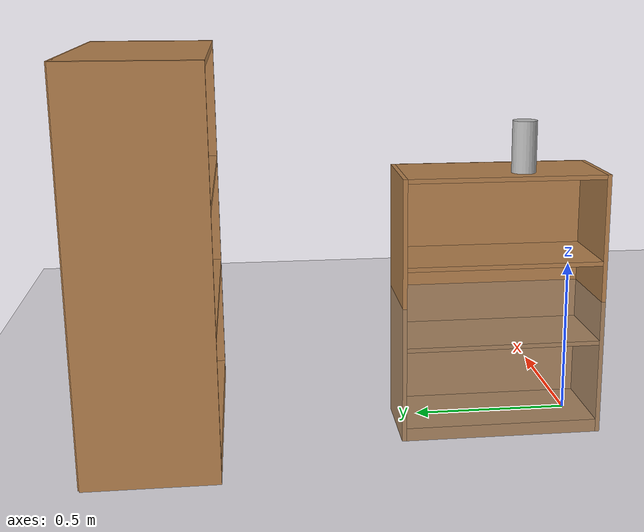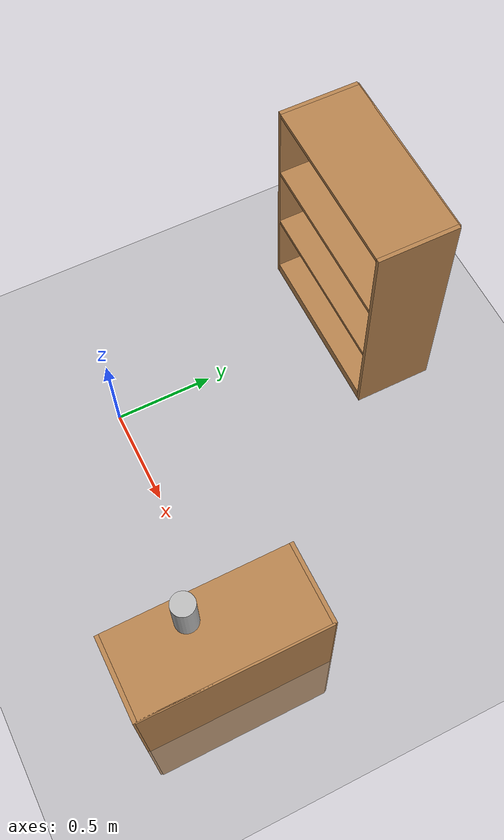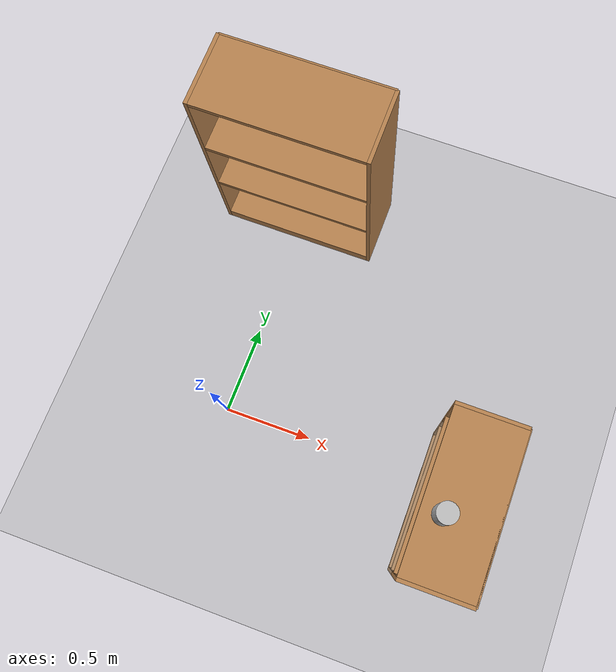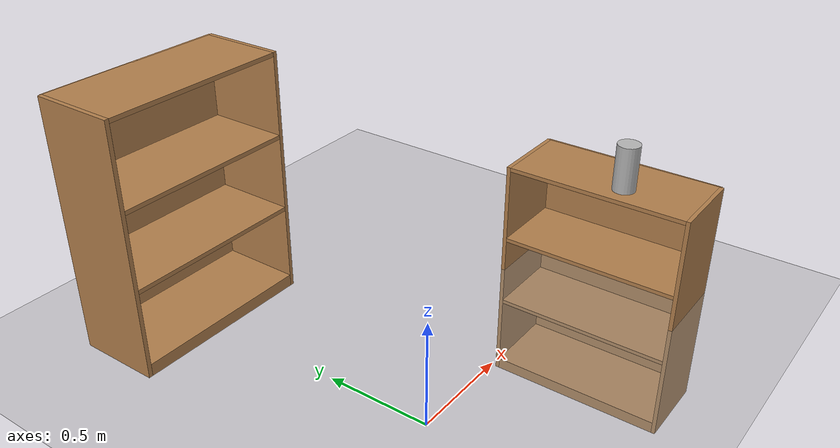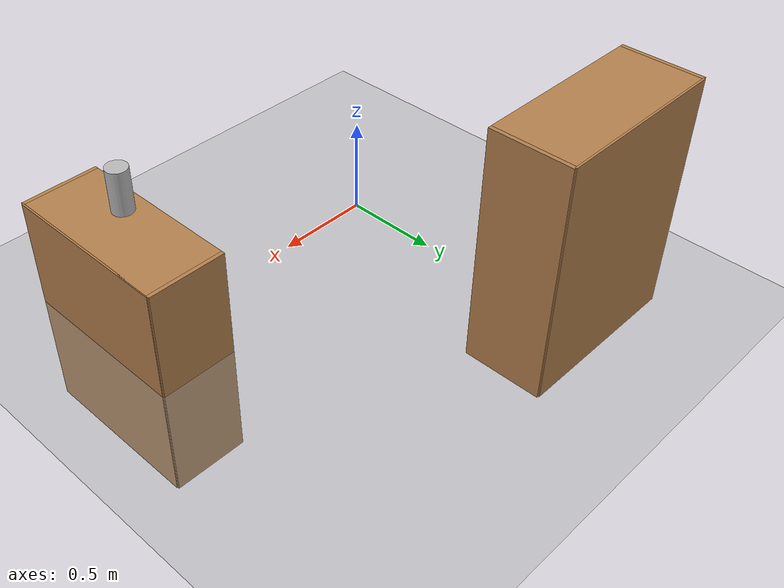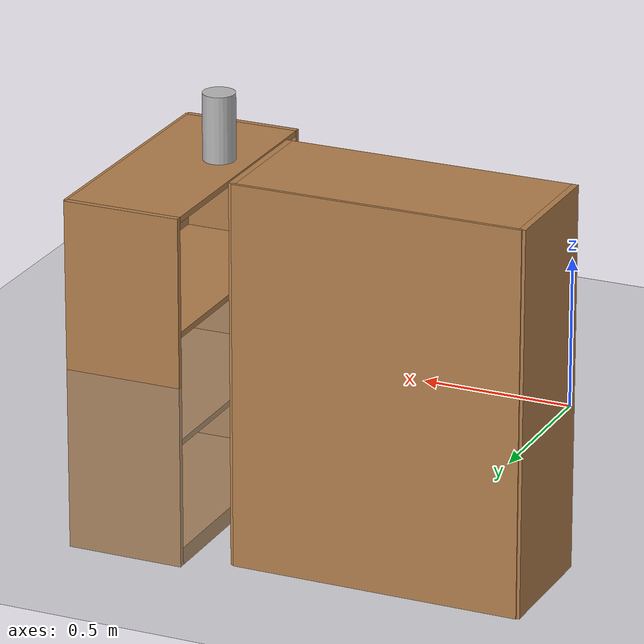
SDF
<sdf version="1.6">
 <world name="default">
  <light name="sun" type="directional">
   <pose>0 0 10 0 -0 0</pose>
   <diffuse>0.8 0.8 0.8 1</diffuse>
   <specular>0.2 0.2 0.2 1</specular>
   <attenuation>
    <range>1000</range>
    <constant>0.9</constant>
    <linear>0.01</linear>
    <quadratic>0.001</quadratic>
   </attenuation>
   <direction>0.5 0.1 -0.9</direction>
  </light>
  <scene><ambient>0.4 0.4 0.4 1</ambient><background>0.7 0.7 0.7 1</background><shadows>1</shadows></scene>
  <physics name="default_physics" default="0" type="ode">
   <max_step_size>0.01</max_step_size>
   <real_time_factor>1</real_time_factor>
   <real_time_update_rate>100</real_time_update_rate>
  </physics>
  <model name="bookshelf">
   <static>1</static>
   <link name="link">
    <inertial><mass>1</mass></inertial>
    <collision name="back">
     <pose>0 0.005 0.6 0 -0 0</pose>
     <geometry><box><size>0.9 0.01 1.2</size></box></geometry>
    </collision>
    <visual name="visual1">
     <pose>0 0.005 0.6 0 -0 0</pose>
     <geometry><box><size>0.9 0.01 1.2</size></box></geometry>
     <material>
      <script><uri>file://media/materials/scripts/gazebo.material</uri><name>Gazebo/Wood</name></script>
     </material>
    </visual>
    <collision name="left_side">
     <pose>0.45 -0.195 0.6 0 -0 0</pose>
     <geometry><box><size>0.02 0.4 1.2</size></box></geometry>
    </collision>
    <visual name="visual2">
     <pose>0.45 -0.195 0.6 0 -0 0</pose>
     <geometry><box><size>0.02 0.4 1.2</size></box></geometry>
     <material>
      <script><uri>file://media/materials/scripts/gazebo.material</uri><name>Gazebo/Wood</name></script>
     </material>
    </visual>
    <collision name="right_side">
     <pose>-0.45 -0.195 0.6 0 -0 0</pose>
     <geometry><box><size>0.02 0.4 1.2</size></box></geometry>
    </collision>
    <visual name="visual3">
     <pose>-0.45 -0.195 0.6 0 -0 0</pose>
     <geometry><box><size>0.02 0.4 1.2</size></box></geometry>
     <material>
      <script><uri>file://media/materials/scripts/gazebo.material</uri><name>Gazebo/Wood</name></script>
     </material>
    </visual>
    <collision name="bottom">
     <pose>0 -0.195 0.03 0 -0 0</pose>
     <geometry><box><size>0.88 0.4 0.06</size></box></geometry>
    </collision>
    <visual name="visual4">
     <pose>0 -0.195 0.03 0 -0 0</pose>
     <geometry><box><size>0.88 0.4 0.06</size></box></geometry>
     <material>
      <script><uri>file://media/materials/scripts/gazebo.material</uri><name>Gazebo/Wood</name></script>
     </material>
    </visual>
    <collision name="top">
     <pose>0 -0.195 1.19 0 -0 0</pose>
     <geometry><box><size>0.88 0.4 0.02</size></box></geometry>
    </collision>
    <visual name="visual5">
     <pose>0 -0.195 1.19 0 -0 0</pose>
     <geometry><box><size>0.88 0.4 0.02</size></box></geometry>
     <material>
      <script><uri>file://media/materials/scripts/gazebo.material</uri><name>Gazebo/Wood</name></script>
     </material>
    </visual>
    <collision name="low_shelf">
     <pose>0 -0.195 0.43 0 -0 0</pose>
     <geometry><box><size>0.88 0.4 0.02</size></box></geometry>
    </collision>
    <visual name="visual6">
     <pose>0 -0.195 0.43 0 -0 0</pose>
     <geometry><box><size>0.88 0.4 0.02</size></box></geometry>
     <material>
      <script><uri>file://media/materials/scripts/gazebo.material</uri><name>Gazebo/Wood</name></script>
     </material>
    </visual>
    <collision name="high_shelf">
     <pose>0 -0.195 0.8 0 -0 0</pose>
     <geometry><box><size>0.88 0.4 0.02</size></box></geometry>
    </collision>
    <visual name="visual7">
     <pose>0 -0.195 0.8 0 -0 0</pose>
     <geometry><box><size>0.88 0.4 0.02</size></box></geometry>
     <material>
      <script><uri>file://media/materials/scripts/gazebo.material</uri><name>Gazebo/Wood</name></script>
     </material>
    </visual>
    <velocity_decay><linear>0</linear><angular>0</angular></velocity_decay>
   </link>
   <pose>0 1.53026 0 0 -0 0</pose>
  </model>
  <model name="ground_plane_0">
   <static>1</static>
   <link name="link">
    <collision name="collision">
     <geometry><plane><normal>0 0 1</normal><size>100 100</size></plane></geometry>
     <surface><friction><ode><mu>100</mu><mu2>50</mu2></ode></friction></surface>
    </collision>
    <visual name="visual">
     <cast_shadows>0</cast_shadows>
     <geometry><plane><normal>0 0 1</normal><size>100 100</size></plane></geometry>
     <material>
      <script><uri>file://media/materials/scripts/gazebo.material</uri><name>Gazebo/Grey</name></script>
     </material>
    </visual>
    <velocity_decay><linear>0</linear><angular>0</angular></velocity_decay>
   </link>
   <pose>0.497681 0 0 0 -0 0</pose>
  </model>
  <gravity>0 0 -9.8</gravity>
  <magnetic_field>6e-06 2.3e-05 -4.2e-05</magnetic_field>
  <atmosphere type="adiabatic"/>
  <spherical_coordinates>
   <surface_model>EARTH_WGS84</surface_model>
   <latitude_deg>0</latitude_deg>
   <longitude_deg>0</longitude_deg>
   <elevation>0</elevation>
   <heading_deg>0</heading_deg>
  </spherical_coordinates>
  <model name="bookshelf_0">
   <static>1</static>
   <link name="link">
    <inertial><mass>1</mass></inertial>
    <collision name="back">
     <pose>0 0.005 0.6 0 -0 0</pose>
     <geometry><box><size>0.9 0.01 1.2</size></box></geometry>
    </collision>
    <visual name="visual1">
     <pose>0 0.005 0.6 0 -0 0</pose>
     <geometry><box><size>0.9 0.01 1.2</size></box></geometry>
     <material>
      <script><uri>file://media/materials/scripts/gazebo.material</uri><name>Gazebo/Wood</name></script>
     </material>
    </visual>
    <collision name="left_side">
     <pose>0.45 -0.195 0.6 0 -0 0</pose>
     <geometry><box><size>0.02 0.4 1.2</size></box></geometry>
    </collision>
    <visual name="visual2">
     <pose>0.45 -0.195 0.6 0 -0 0</pose>
     <geometry><box><size>0.02 0.4 1.2</size></box></geometry>
     <material>
      <script><uri>file://media/materials/scripts/gazebo.material</uri><name>Gazebo/Wood</name></script>
     </material>
    </visual>
    <collision name="right_side">
     <pose>-0.45 -0.195 0.6 0 -0 0</pose>
     <geometry><box><size>0.02 0.4 1.2</size></box></geometry>
    </collision>
    <visual name="visual3">
     <pose>-0.45 -0.195 0.6 0 -0 0</pose>
     <geometry><box><size>0.02 0.4 1.2</size></box></geometry>
     <material>
      <script><uri>file://media/materials/scripts/gazebo.material</uri><name>Gazebo/Wood</name></script>
     </material>
    </visual>
    <collision name="bottom">
     <pose>0 -0.195 0.03 0 -0 0</pose>
     <geometry><box><size>0.88 0.4 0.06</size></box></geometry>
    </collision>
    <visual name="visual4">
     <pose>0 -0.195 0.03 0 -0 0</pose>
     <geometry><box><size>0.88 0.4 0.06</size></box></geometry>
     <material>
      <script><uri>file://media/materials/scripts/gazebo.material</uri><name>Gazebo/Wood</name></script>
     </material>
    </visual>
    <collision name="top">
     <pose>0 -0.195 1.19 0 -0 0</pose>
     <geometry><box><size>0.88 0.4 0.02</size></box></geometry>
    </collision>
    <visual name="visual5">
     <pose>0 -0.195 1.19 0 -0 0</pose>
     <geometry><box><size>0.88 0.4 0.02</size></box></geometry>
     <material>
      <script><uri>file://media/materials/scripts/gazebo.material</uri><name>Gazebo/Wood</name></script>
     </material>
    </visual>
    <collision name="low_shelf">
     <pose>0 -0.195 0.43 0 -0 0</pose>
     <geometry><box><size>0.88 0.4 0.02</size></box></geometry>
    </collision>
    <visual name="visual6">
     <pose>0 -0.195 0.43 0 -0 0</pose>
     <geometry><box><size>0.88 0.4 0.02</size></box></geometry>
     <material>
      <script><uri>file://media/materials/scripts/gazebo.material</uri><name>Gazebo/Wood</name></script>
     </material>
    </visual>
    <collision name="high_shelf">
     <pose>0 -0.195 0.8 0 -0 0</pose>
     <geometry><box><size>0.88 0.4 0.02</size></box></geometry>
    </collision>
    <visual name="visual7">
     <pose>0 -0.195 0.8 0 -0 0</pose>
     <geometry><box><size>0.88 0.4 0.02</size></box></geometry>
     <material>
      <script><uri>file://media/materials/scripts/gazebo.material</uri><name>Gazebo/Wood</name></script>
     </material>
    </visual>
   </link>
   <pose>1.58402 -0.084605 -0.626323 0 0 -1.5697</pose>
  </model>
  <model name="beer">
   <link name="link">
    <pose>0 0 0.115 0 -0 0</pose>
    <inertial>
     <mass>0.39</mass>
     <inertia><ixx>0.00058</ixx><ixy>0</ixy><ixz>0</ixz><iyy>0.00058</iyy><iyz>0</iyz><izz>0.00019</izz></inertia>
    </inertial>
    <collision name="collision">
     <geometry><cylinder><radius>0.055</radius><length>0.23</length></cylinder></geometry>
    </collision>
    <visual name="visual">
     <geometry><cylinder><radius>0.055</radius><length>0.23</length></cylinder></geometry>
     <material>
      <script>
       <uri>model://beer/materials/scripts</uri>
       <uri>model://beer/materials/textures</uri>
       <name>Beer/Diffuse</name>
      </script>
     </material>
    </visual>
   </link>
   <pose>1.30314 -0.177534 0.572876 -0.001434 -1.5e-05 0.161237</pose>
  </model>
 </world>
</sdf>
